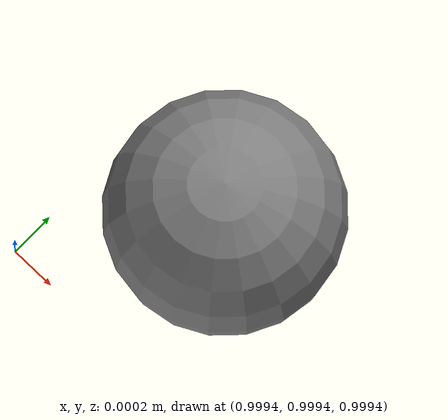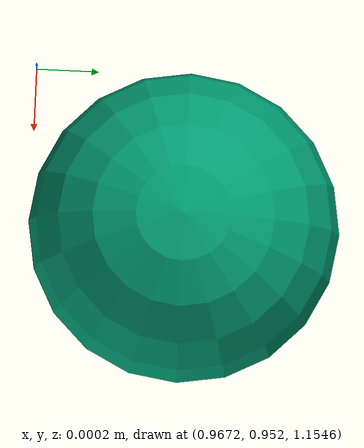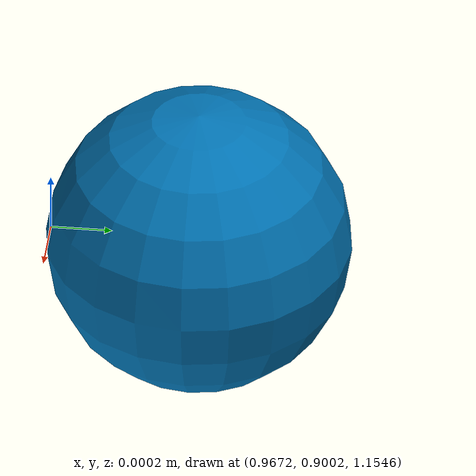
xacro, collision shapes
<?xml version="1.0"?>
<robot name="TestKinect" xmlns:xacro="http://ros.org/wiki/xacro">
	<link name="world"/>
  <xacro:include filename="$(find common_sensors)/urdf/sensors/kinect2.urdf.xacro" />
  <xacro:kinect2 parent="world" name="KinectSensor2">
    <origin xyz="1 1 1" rpy="0 0 0" />
  </xacro:kinect2>
</robot>

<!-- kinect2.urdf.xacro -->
<robot xmlns:xacro="http://www.ros.org/wiki/xacro">
  <xacro:include filename="$(find common_sensors)/urdf/sensors/kinect2.gazebo.xacro" />
  <xacro:include filename="$(find common_sensors)/urdf/sensors/kinect2_properties.urdf.xacro" />
  <xacro:include filename="$(find common_sensors)/urdf/common_properties.urdf.xacro" />

  <xacro:property name="ir_depth_rgb_offset_y" value="0.01"/> <!-- FIXME: what is this offset? -->

  <!-- Kinect2 and mount assembly -->
  <xacro:macro name="kinect2" params="name parent *origin">
    <joint name="${name}_kinect2_joint" type="fixed">
      <xacro:insert_block name="origin" />
      <parent link="${parent}"/>
      <child link="${name}_kinect2_link"/>
    </joint>
    <link name="${name}_kinect2_link">
      <inertial>
        <mass value="0.1"/>
        <origin xyz="0 0 0" rpy="0 0 0"/>
        <inertia ixx="0.01"  ixy="0.0"  ixz="0.0"
                 iyy="0.01"  iyz="0.0"
                 izz="0.01" />
      </inertial>
      <visual>
        <origin xyz="-0.102 -0.148 0" rpy="0 0 0"/>
        <geometry>
          <mesh filename="package://common_sensors/meshes/sensors/kinect2_assembly.STL" scale="0.001 0.001 0.001" />
        </geometry>
        <material name="gray">
          <color rgba="0.5 0.5 0.5 1"/>
        </material>
      </visual>
      <collision>
        <origin xyz="0 0 0" rpy="0 0 0"/>
        <geometry>
          <sphere radius="0.0005"/>
        </geometry>
      </collision>
    </link>

    <!-- kinect2 ir sensor physical attachment -->
    <joint name="${name}_kinect2_ir_joint" type="fixed">
      <origin xyz="-0.032267 -0.0475 0.155" rpy="0 0 0"/>
      <parent link="${name}_kinect2_link"/>
      <child link="${name}_kinect2_ir_link"/>
    </joint>
    <link name="${name}_kinect2_ir_link">
      <inertial>
        <mass value="0.1" />
        <origin xyz="0 0 0" rpy="0 0 0"/>
        <inertia ixx="0.01"  ixy="0.0"  ixz="0.0"
                 iyy="0.01"  iyz="0.0"
                 izz="0.01" />
      </inertial>
      <visual>
        <origin xyz="0.0 0.0 0" rpy="0 0 0"/>
        <geometry>
          <sphere radius="0.0005"/>
        </geometry>
      </visual>
      <collision>
        <origin xyz="0.0 0.0 0" rpy="0 0 0"/>
        <geometry>
          <sphere radius="0.0005"/>
        </geometry>
      </collision>
    </link>
    <!-- kinect2 ir sensor frame -->
    <joint name="${name}_kinect2_ir_optical_frame_joint" type="fixed">
      <origin xyz="${cal_kinect_x}                  ${cal_kinect_y+ir_depth_rgb_offset_y} ${cal_kinect_z}"
              rpy="${-M_PI/2+cal_kinect_roll}       ${0.0+cal_kinect_pitch}               ${-M_PI/2+cal_kinect_yaw}" />
      <parent link="${name}_kinect2_ir_link"/>
      <child link="${name}_kinect2_ir_optical_frame"/>
    </joint>

    <link name="${name}_kinect2_ir_optical_frame"/>
    <!-- gazebo extensions -->
    <xacro:kinect2_ir_gazebo link_name="${name}_kinect2_ir_link" frame_name="${name}_kinect2_ir_optical_frame" camera_name="head_mount_kinect2" />

    <!-- kinect2 rgb sensor physical attachment -->
    <joint name="${name}_kinect2_rgb_joint" type="fixed">
      <origin xyz="0 -0.05175 0" rpy="0 0 0"/>
      <parent link="${name}_kinect2_ir_link"/>
      <child link="${name}_kinect2_rgb_link"/>
    </joint>

    <link name="${name}_kinect2_rgb_link" >
      <inertial>
        <mass value="0.1" />
        <origin xyz="0 0 0" rpy="0 0 0"/>
        <inertia ixx="0.01"  ixy="0.0"  ixz="0.0"
                 iyy="0.01"  iyz="0.0"
                 izz="0.01" />
      </inertial>
      <visual>
        <origin xyz="${cal_kinect_x}            ${cal_kinect_y}                 ${cal_kinect_z}"
                rpy="${-M_PI/2+cal_kinect_roll} ${0.0+cal_kinect_pitch}         ${-M_PI/2+cal_kinect_yaw}" />
        <geometry>
          <sphere radius="0.0005"/>
        </geometry>
      </visual>
      <collision>
        <origin xyz="0.0 0.0 0" rpy="0 0 0"/>
        <geometry>
          <sphere radius="0.0005"/>
        </geometry>
      </collision>
    </link>

    <!-- kinect2 rgb sensor frame -->
    <joint name="${name}_kinect2_rgb_optical_frame_joint" type="fixed">
      <origin xyz="${cal_kinect_x}            ${cal_kinect_y}                 ${cal_kinect_z}"
              rpy="${-M_PI/2+cal_kinect_roll} ${0.0+cal_kinect_pitch}         ${-M_PI/2+cal_kinect_yaw}" />
      <parent link="${name}_kinect2_rgb_link"/>
      <child link="${name}_kinect2_rgb_optical_frame"/>
    </joint>

    <link name="${name}_kinect2_rgb_optical_frame"/>
    <!-- gazebo extensions -->
    <xacro:kinect2_rgb_gazebo link_name="${name}_kinect2_rgb_link" frame_name="${name}_kinect2_rgb_optical_frame" camera_name="head_mount_kinect2" />

  </xacro:macro>

</robot>

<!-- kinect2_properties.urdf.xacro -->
<robot xmlns:sensor="http://playerstage.sourceforge.net/gazebo/xmlschema/#sensor"
       xmlns:controller="http://playerstage.sourceforge.net/gazebo/xmlschema/#controller"
       xmlns:interface="http://playerstage.sourceforge.net/gazebo/xmlschema/#interface"
       xmlns:xacro="http://www.ros.org/wiki/xacro">

  <xacro:property name="VELOCITY_LIMIT_SCALE" value="0.6" />

  <!-- Gear Ratio Corrections: Divide transmission reductions by these factors (Nominally 1)-->
  <xacro:property name="cal_r_shoulder_pan_gearing"   value="1.0" />
  <xacro:property name="cal_r_shoulder_lift_gearing"  value="1.0" />
  <xacro:property name="cal_r_upper_arm_roll_gearing" value="1.0" />

  <!-- ********** Right Arm ********** -->
  <!-- Flag offsets: Add to the optical flag locations (Nominally 0) -->
  <xacro:property name="cal_r_shoulder_pan_flag"   value="0.0" />
  <xacro:property name="cal_r_shoulder_lift_flag"  value="0.0" />
  <xacro:property name="cal_r_upper_arm_roll_flag" value="0.0" />
  <xacro:property name="cal_r_elbow_flex_flag"     value="0.0" />
  <xacro:property name="cal_r_forearm_roll_flag"   value="0.0" />
  <xacro:property name="cal_r_wrist_flex_flag"     value="0.0" />
  <xacro:property name="cal_r_wrist_roll_flag"     value="0.0" />

  <!-- ********** Head ********** -->
  <!-- Head Location: Add to the transform from torso to head_pan_link (Nominally 0) -->
  <xacro:property name="cal_head_x" value="0.0" />
  <xacro:property name="cal_head_y" value="0.0" />
  <xacro:property name="cal_head_z" value="0.0" />
  <xacro:property name="cal_head_roll" value="0.0" />
  <xacro:property name="cal_head_pitch" value="0.0" />
  <xacro:property name="cal_head_yaw" value="0.0" />

  <!-- Flag Offsets -->
  <xacro:property name="cal_head_pan_flag"  value="0.0" />
  <xacro:property name="cal_head_tilt_flag" value="0.0" />

  <xacro:property name="cal_head_pan_flag" value="0.0"/>
  <xacro:property name="cal_head_tilt_flag" value="0.0"/>

  <!-- Casters -->
  <xacro:property name="cal_caster_fl" value="0.0" />
  <xacro:property name="cal_caster_fr" value="0.0" />
  <xacro:property name="cal_caster_bl" value="0.0" />
  <xacro:property name="cal_caster_br" value="0.0" />

  <!-- Stereo Camera Location (Nominally 0) -->
  <xacro:property name="cal_stereo_x" value="0.0" />
  <xacro:property name="cal_stereo_y" value="0.0" />
  <xacro:property name="cal_stereo_z" value="0.0" />
  <xacro:property name="cal_stereo_roll" value="0.0" />
  <xacro:property name="cal_stereo_pitch" value="0.0" />
  <xacro:property name="cal_stereo_yaw" value="0.0" />

  <!-- Kinect Camera Location (Nominally 0) -->
  <xacro:property name="cal_kinect_x" value="0.0" />
  <xacro:property name="cal_kinect_y" value="0.0" />
  <xacro:property name="cal_kinect_z" value="0.0" />
  <xacro:property name="cal_kinect_roll" value="0.0" />
  <xacro:property name="cal_kinect_pitch" value="0.0" />
  <xacro:property name="cal_kinect_yaw" value="0.0" />

  <!-- HighDef Camera Location (Nominally 0) -->
  <xacro:property name="cal_high_def_x" value="0.0" />
  <xacro:property name="cal_high_def_y" value="0.0" />
  <xacro:property name="cal_high_def_z" value="0.0" />
  <xacro:property name="cal_high_def_roll" value="0.0" />
  <xacro:property name="cal_high_def_pitch" value="0.0" />
  <xacro:property name="cal_high_def_yaw" value="0.0" />

  <!-- Throwing in left arm constants to appease the xacro parser -->
  <xacro:property name="cal_l_shoulder_pan_flag" value="0.000000" />
  <xacro:property name="cal_l_wrist_roll_flag" value="0.0" />
</robot>
